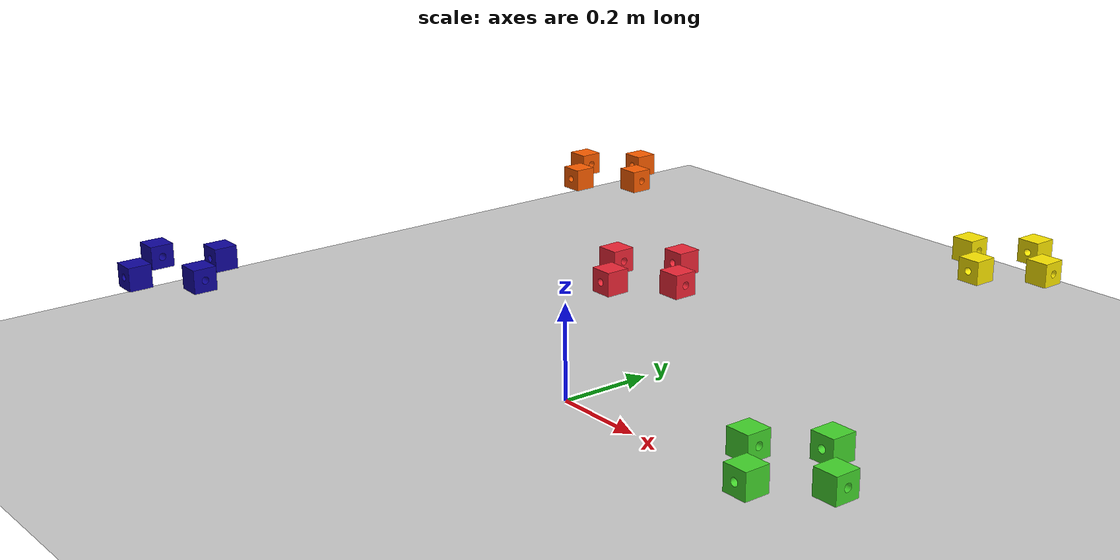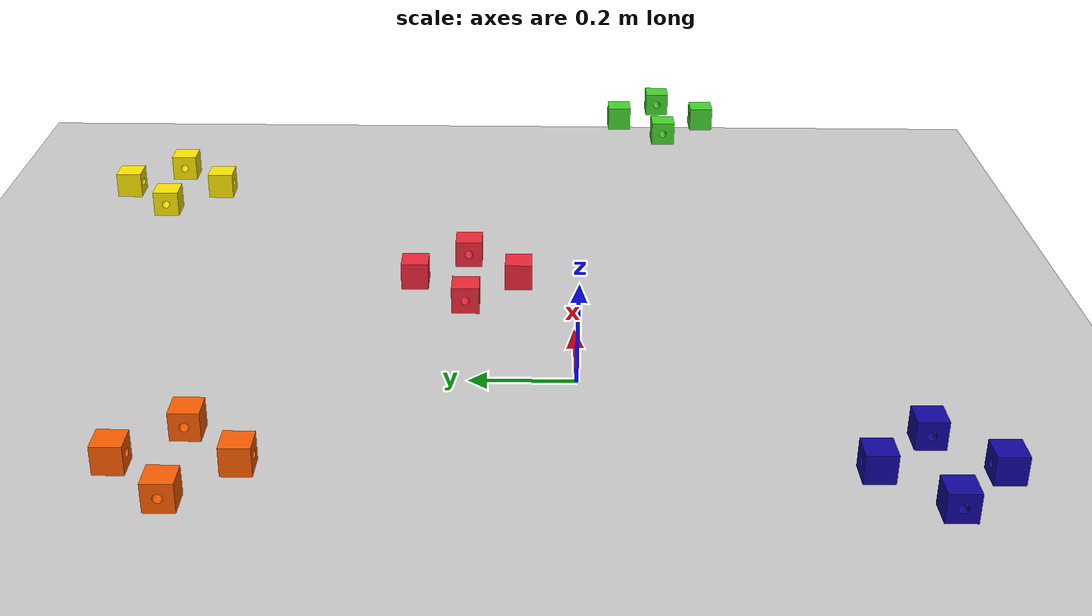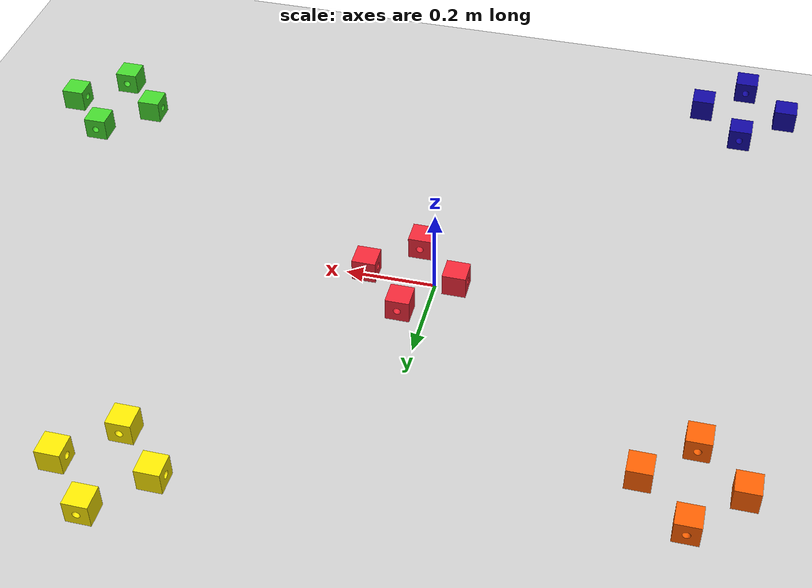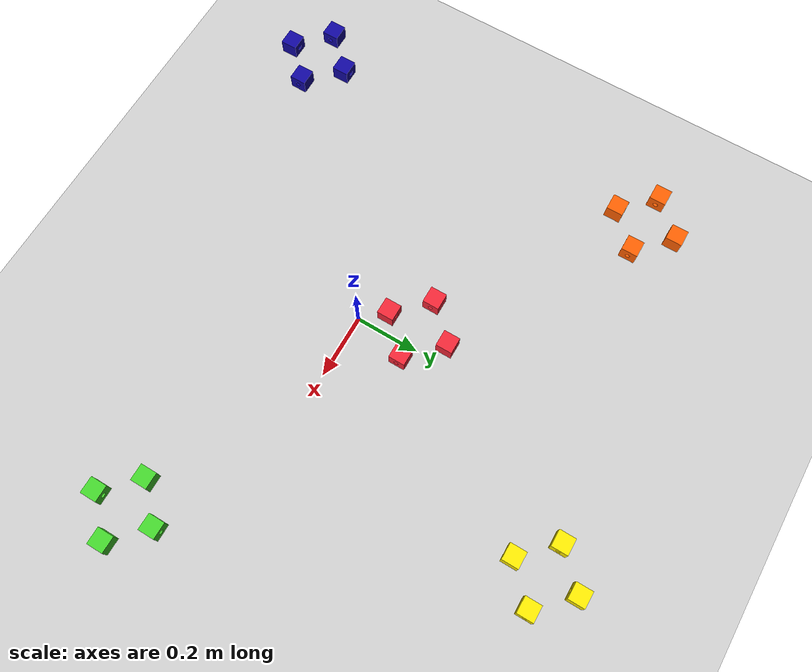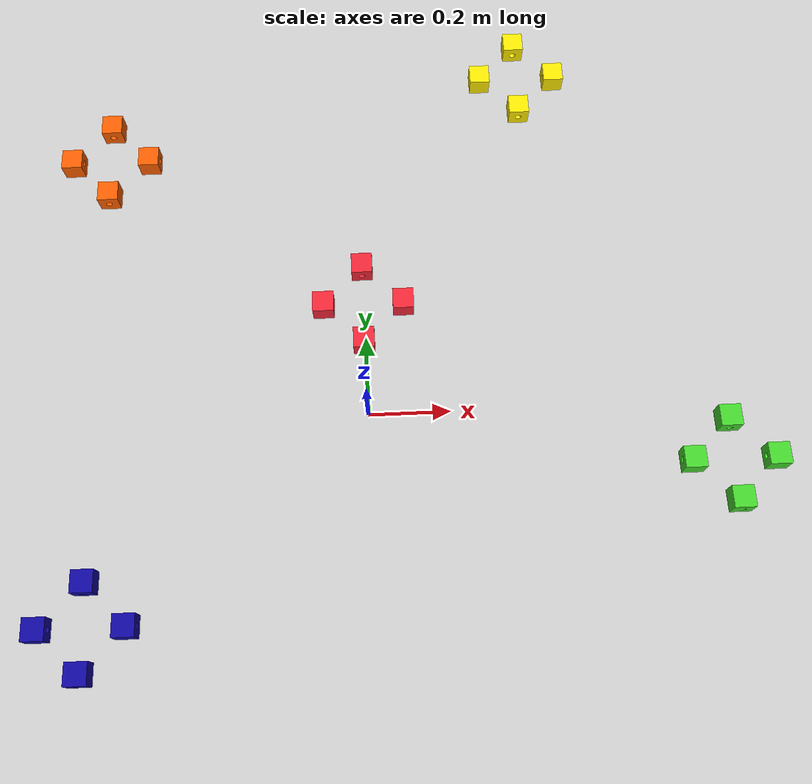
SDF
<sdf version="1.6">
 <world name="wro_world">
  <include><uri>model://sun</uri></include>
  <include><uri>model://ground_plane</uri></include>
  <include><uri>model://orange_block_0</uri><pose>-.6 .668753 .224 0 0 0</pose></include>
  <include><uri>model://orange_block_oppo</uri><pose>-.531247 .6 .224 0 0 0</pose></include>
  <include><uri>model://orange_block_0</uri><pose>-.6 .484982 .224 0 0 0</pose></include>
  <include><uri>model://orange_block_oppo</uri><pose>-.715018 .6 .224 0 0 0</pose></include>
  <include><uri>model://yellow_block_0</uri><pose>.4 .868753 .224 0 0 0</pose></include>
  <include><uri>model://yellow_block_oppo</uri><pose>.468753 .8 .224 0 0 0</pose></include>
  <include><uri>model://yellow_block_0</uri><pose>.4 .685 .224 0 0 0</pose></include>
  <include><uri>model://yellow_block_oppo</uri><pose>.284982 .8 .224 0 0 0</pose></include>
  <include><uri>model://red_block_2</uri><pose>0 .268753 .224 0 0 0</pose></include>
  <include><uri>model://red_block_oppo</uri><pose>0.068753 .2 .224 0 0 0</pose></include>
  <include><uri>model://red_block_2</uri><pose>0 .085 .224 0 0 0</pose></include>
  <include><uri>model://red_block_oppo</uri><pose>-.115018 .2 .224 0 0 0</pose></include>
  <include><uri>model://green_block</uri><pose>.8 -.315 .224 0 0 0</pose></include>
  <include><uri>model://green_block_oppo</uri><pose>.868753 -.2 .224 0 0 0</pose></include>
  <include><uri>model://green_block</uri><pose>.8 -.134 .224 0 0 0</pose></include>
  <include><uri>model://green_block_oppo</uri><pose>.684982 -.2 .224 0 0 0</pose></include>
  <include><uri>model://blue_block</uri><pose>-.6 -.615018 .224 0 0 0</pose></include>
  <include><uri>model://blue_block_oppo</uri><pose>-.668753 -.5 .224 0 0 0</pose></include>
  <include><uri>model://blue_block</uri><pose>-.6 -.431247 .224 0 0 0</pose></include>
  <include><uri>model://blue_block_oppo</uri><pose>-.484982 -.5 .224 0 0 0</pose></include>
 </world>
</sdf>

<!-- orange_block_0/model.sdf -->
<sdf version='1.6'>
  <model name='orange_block_0'>
    <link name='link_0'>
      <pose frame=''>0 0 0 0 -0 0</pose>
      <inertial>
        <mass>1</mass>
        <inertia>
          <ixx>0.166667</ixx>
          <ixy>0</ixy>
          <ixz>0</ixz>
          <iyy>0.166667</iyy>
          <iyz>0</iyz>
          <izz>0.166667</izz>
        </inertia>
        <pose frame=''>0 0 0 0 -0 0</pose>
      </inertial>
      <self_collide>0</self_collide>
      <kinematic>0</kinematic>
      <gravity>0</gravity>
      <visual name='visual'>
        <pose frame=''>0 0 0 0 -0 0</pose>
        <geometry>
          <mesh>
            <uri>model://mesh/wro.stl</uri>
            <scale>1 1 1</scale>
          </mesh>
        </geometry>
        <material>
          <lighting>1</lighting>
          <script>
            <uri>file://media/materials/scripts/gazebo.material</uri>
            <name>Gazebo/Grey</name>
          </script>
          <ambient>0.996 0.369 0 1</ambient>
          <diffuse>0.996 0.369 0 1</diffuse>
          <specular>0.996 0.369 0 1</specular>
          <emissive>0 0 0 1</emissive>
          <shader type='vertex'>
            <normal_map>__default__</normal_map>
          </shader>
        </material>
        <cast_shadows>1</cast_shadows>
        <transparency>0</transparency>
      </visual>
      <collision name='collision'>
        <laser_retro>0</laser_retro>
        <max_contacts>10</max_contacts>
        <pose frame=''>0 0 0 0 -0 0</pose>
        <geometry>
          <mesh>
            <uri>model://mesh/wro.stl</uri>
          </mesh>
        </geometry>
        <surface>
          <friction>
            <ode>
              <mu>1</mu>
              <mu2>1</mu2>
              <fdir1>0 0 0</fdir1>
              <slip1>0</slip1>
              <slip2>0</slip2>
            </ode>
            <torsional>
              <coefficient>1</coefficient>
              <patch_radius>0</patch_radius>
              <surface_radius>0</surface_radius>
              <use_patch_radius>1</use_patch_radius>
              <ode>
                <slip>0</slip>
              </ode>
            </torsional>
          </friction>
          <bounce>
            <restitution_coefficient>0</restitution_coefficient>
            <threshold>1e+06</threshold>
          </bounce>
          <contact>
            <collide_without_contact>0</collide_without_contact>
            <collide_without_contact_bitmask>1</collide_without_contact_bitmask>
            <collide_bitmask>1</collide_bitmask>
            <ode>
              <soft_cfm>0</soft_cfm>
              <soft_erp>0.2</soft_erp>
              <kp>1e+13</kp>
              <kd>1</kd>
              <max_vel>0.01</max_vel>
              <min_depth>0</min_depth>
            </ode>
            <bullet>
              <split_impulse>1</split_impulse>
              <split_impulse_penetration_threshold>-0.01</split_impulse_penetration_threshold>
              <soft_cfm>0</soft_cfm>
              <soft_erp>0.2</soft_erp>
              <kp>1e+13</kp>
              <kd>1</kd>
            </bullet>
          </contact>
        </surface>
      </collision>
    </link>
    <static>0</static>
    <allow_auto_disable>1</allow_auto_disable>
  </model>
</sdf>

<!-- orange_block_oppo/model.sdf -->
<sdf version='1.6'>
  <model name='orange_block_oppo'>
    <link name='link_1'>
      <pose frame=''>0 0 0 0 -0 -1.5708</pose>
      <inertial>
        <mass>1</mass>
        <inertia>
          <ixx>0.166667</ixx>
          <ixy>0</ixy>
          <ixz>0</ixz>
          <iyy>0.166667</iyy>
          <iyz>0</iyz>
          <izz>0.166667</izz>
        </inertia>
        <pose frame=''>0 0 0 0 -0 0</pose>
      </inertial>
      <self_collide>0</self_collide>
      <kinematic>0</kinematic>
      <gravity>0</gravity>
      <visual name='visual'>
        <pose frame=''>0 0 0 0 -0 0</pose>
        <geometry>
          <mesh>
            <uri>model://mesh/wro.stl</uri>
            <scale>1 1 1</scale>
          </mesh>
        </geometry>
        <material>
          <lighting>1</lighting>
          <script>
            <uri>file://media/materials/scripts/gazebo.material</uri>
            <name>Gazebo/Grey</name>
          </script>
          <ambient>0.996 0.369 0 1</ambient>
          <diffuse>0.996 0.369 0 1</diffuse>
          <specular>0.996 0.369 0 1</specular>
          <emissive>0 0 0 1</emissive>
          <shader type='vertex'>
            <normal_map>__default__</normal_map>
          </shader>
        </material>
        <cast_shadows>1</cast_shadows>
        <transparency>0</transparency>
      </visual>
      <collision name='collision'>
        <laser_retro>0</laser_retro>
        <max_contacts>10</max_contacts>
        <pose frame=''>0 0 0 0 -0 0</pose>
        <geometry>
          <mesh>
            <uri>model://mesh/wro.stl</uri>
          </mesh>
        </geometry>
        <surface>
          <friction>
            <ode>
              <mu>1</mu>
              <mu2>1</mu2>
              <fdir1>0 0 0</fdir1>
              <slip1>0</slip1>
              <slip2>0</slip2>
            </ode>
            <torsional>
              <coefficient>1</coefficient>
              <patch_radius>0</patch_radius>
              <surface_radius>0</surface_radius>
              <use_patch_radius>1</use_patch_radius>
              <ode>
                <slip>0</slip>
              </ode>
            </torsional>
          </friction>
          <bounce>
            <restitution_coefficient>0</restitution_coefficient>
            <threshold>1e+06</threshold>
          </bounce>
          <contact>
            <collide_without_contact>0</collide_without_contact>
            <collide_without_contact_bitmask>1</collide_without_contact_bitmask>
            <collide_bitmask>1</collide_bitmask>
            <ode>
              <soft_cfm>0</soft_cfm>
              <soft_erp>0.2</soft_erp>
              <kp>1e+13</kp>
              <kd>1</kd>
              <max_vel>0.01</max_vel>
              <min_depth>0</min_depth>
            </ode>
            <bullet>
              <split_impulse>1</split_impulse>
              <split_impulse_penetration_threshold>-0.01</split_impulse_penetration_threshold>
              <soft_cfm>0</soft_cfm>
              <soft_erp>0.2</soft_erp>
              <kp>1e+13</kp>
              <kd>1</kd>
            </bullet>
          </contact>
        </surface>
      </collision>
    </link>
    <static>0</static>
    <allow_auto_disable>1</allow_auto_disable>
  </model>
</sdf>

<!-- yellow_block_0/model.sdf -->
<sdf version='1.6'>
  <model name='yellow_block_0'>
    <link name='link_1'>
      <pose frame=''>0 0 0 0 -0 0</pose>
      <inertial>
        <mass>1</mass>
        <inertia>
          <ixx>0.166667</ixx>
          <ixy>0</ixy>
          <ixz>0</ixz>
          <iyy>0.166667</iyy>
          <iyz>0</iyz>
          <izz>0.166667</izz>
        </inertia>
        <pose frame=''>0 0 0.224 0 -0 0</pose>
      </inertial>
      <self_collide>0</self_collide>
      <kinematic>0</kinematic>
      <gravity>0</gravity>
      <visual name='visual'>
        <pose frame=''>0 0 0 0 -0 0</pose>
        <geometry>
          <mesh>
            <uri>model://mesh/wro.stl</uri>
            <scale>1 1 1</scale>
          </mesh>
        </geometry>
        <material>
          <lighting>1</lighting>
          <script>
            <uri>file://media/materials/scripts/gazebo.material</uri>
            <name>Gazebo/Grey</name>
          </script>
          <ambient>0.996 0.914 0 1</ambient>
          <diffuse>0.996 0.914 0 1</diffuse>
          <specular>0.996 0.914 0 1</specular>
          <emissive>0 0 0 1</emissive>
          <shader type='vertex'>
            <normal_map>__default__</normal_map>
          </shader>
        </material>
        <cast_shadows>1</cast_shadows>
        <transparency>0</transparency>
      </visual>
      <collision name='collision'>
        <laser_retro>0</laser_retro>
        <max_contacts>10</max_contacts>
        <pose frame=''>0 0 0 0 -0 0</pose>
        <geometry>
          <mesh>
            <uri>model://mesh/wro.stl</uri>
          </mesh>
        </geometry>
        <surface>
          <friction>
            <ode>
              <mu>1</mu>
              <mu2>1</mu2>
              <fdir1>0 0 0</fdir1>
              <slip1>0</slip1>
              <slip2>0</slip2>
            </ode>
            <torsional>
              <coefficient>1</coefficient>
              <patch_radius>0</patch_radius>
              <surface_radius>0</surface_radius>
              <use_patch_radius>1</use_patch_radius>
              <ode>
                <slip>0</slip>
              </ode>
            </torsional>
          </friction>
          <bounce>
            <restitution_coefficient>0</restitution_coefficient>
            <threshold>1e+06</threshold>
          </bounce>
          <contact>
            <collide_without_contact>0</collide_without_contact>
            <collide_without_contact_bitmask>1</collide_without_contact_bitmask>
            <collide_bitmask>1</collide_bitmask>
            <ode>
              <soft_cfm>0</soft_cfm>
              <soft_erp>0.2</soft_erp>
              <kp>1e+13</kp>
              <kd>1</kd>
              <max_vel>0.01</max_vel>
              <min_depth>0</min_depth>
            </ode>
            <bullet>
              <split_impulse>1</split_impulse>
              <split_impulse_penetration_threshold>-0.01</split_impulse_penetration_threshold>
              <soft_cfm>0</soft_cfm>
              <soft_erp>0.2</soft_erp>
              <kp>1e+13</kp>
              <kd>1</kd>
            </bullet>
          </contact>
        </surface>
      </collision>
    </link>
    <static>0</static>
    <allow_auto_disable>1</allow_auto_disable>
  </model>
</sdf>

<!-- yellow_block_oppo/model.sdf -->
<sdf version='1.6'>
  <model name='yellow_block_oppo'>
    <link name='link_1'>
      <pose frame=''>0 0 0 -0 -0 -1.5708</pose>
      <inertial>
        <mass>1</mass>
        <inertia>
          <ixx>0.166667</ixx>
          <ixy>0</ixy>
          <ixz>0</ixz>
          <iyy>0.166667</iyy>
          <iyz>0</iyz>
          <izz>0.166667</izz>
        </inertia>
        <pose frame=''>0 0 0 0 -0 0</pose>
      </inertial>
      <self_collide>0</self_collide>
      <kinematic>0</kinematic>
      <gravity>0</gravity>
      <visual name='visual'>
        <pose frame=''>0 0 0 0 -0 0</pose>
        <geometry>
          <mesh>
            <uri>model://mesh/wro.stl</uri>
            <scale>1 1 1</scale>
          </mesh>
        </geometry>
        <material>
          <lighting>1</lighting>
          <script>
            <uri>file://media/materials/scripts/gazebo.material</uri>
            <name>Gazebo/Grey</name>
          </script>
          <ambient>0.996 0.914 0 1</ambient>
          <diffuse>0.996 0.914 0 1</diffuse>
          <specular>0.996 0.914 0 1</specular>
          <emissive>0 0 0 1</emissive>
          <shader type='vertex'>
            <normal_map>__default__</normal_map>
          </shader>
        </material>
        <cast_shadows>1</cast_shadows>
        <transparency>0</transparency>
      </visual>
      <collision name='collision'>
        <laser_retro>0</laser_retro>
        <max_contacts>10</max_contacts>
        <pose frame=''>0 0 0 0 -0 0</pose>
        <geometry>
          <mesh>
            <uri>model://mesh/wro.stl</uri>
          </mesh>
        </geometry>
        <surface>
          <friction>
            <ode>
              <mu>1</mu>
              <mu2>1</mu2>
              <fdir1>0 0 0</fdir1>
              <slip1>0</slip1>
              <slip2>0</slip2>
            </ode>
            <torsional>
              <coefficient>1</coefficient>
              <patch_radius>0</patch_radius>
              <surface_radius>0</surface_radius>
              <use_patch_radius>1</use_patch_radius>
              <ode>
                <slip>0</slip>
              </ode>
            </torsional>
          </friction>
          <bounce>
            <restitution_coefficient>0</restitution_coefficient>
            <threshold>1e+06</threshold>
          </bounce>
          <contact>
            <collide_without_contact>0</collide_without_contact>
            <collide_without_contact_bitmask>1</collide_without_contact_bitmask>
            <collide_bitmask>1</collide_bitmask>
            <ode>
              <soft_cfm>0</soft_cfm>
              <soft_erp>0.2</soft_erp>
              <kp>1e+13</kp>
              <kd>1</kd>
              <max_vel>0.01</max_vel>
              <min_depth>0</min_depth>
            </ode>
            <bullet>
              <split_impulse>1</split_impulse>
              <split_impulse_penetration_threshold>-0.01</split_impulse_penetration_threshold>
              <soft_cfm>0</soft_cfm>
              <soft_erp>0.2</soft_erp>
              <kp>1e+13</kp>
              <kd>1</kd>
            </bullet>
          </contact>
        </surface>
      </collision>
    </link>
    <static>0</static>
    <allow_auto_disable>1</allow_auto_disable>
  </model>
</sdf>

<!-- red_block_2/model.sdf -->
<sdf version='1.6'>
  <model name='red_block_2'>
    <link name='link_9'>
      <pose frame=''>0 0 0 0 -0 0</pose>
      <inertial>
        <mass>1</mass>
        <inertia>
          <ixx>0.166667</ixx>
          <ixy>0</ixy>
          <ixz>0</ixz>
          <iyy>0.166667</iyy>
          <iyz>0</iyz>
          <izz>0.166667</izz>
        </inertia>
        <pose frame=''>0 0 0 0 -0 0</pose>
      </inertial>
      <self_collide>0</self_collide>
      <kinematic>0</kinematic>
      <gravity>0</gravity>
      <visual name='visual'>
        <pose frame=''>0 0 0 0 -0 0</pose>
        <geometry>
          <mesh>
            <uri>model://mesh/wro.stl</uri>
            <scale>1 1 1</scale>
          </mesh>
        </geometry>
        <material>
          <lighting>1</lighting>
          <script>
            <uri>file://media/materials/scripts/gazebo.material</uri>
            <name>Gazebo/Grey</name>
          </script>
          <ambient>0.933 0.153 0.216 1</ambient>
          <diffuse>0.933 0.153 0.216 1</diffuse>
          <specular>0.933 0.153 0.216 1</specular>
          <emissive>0 0 0 1</emissive>
          <shader type='vertex'>
            <normal_map>__default__</normal_map>
          </shader>
        </material>
        <cast_shadows>1</cast_shadows>
        <transparency>0</transparency>
      </visual>
      <collision name='collision'>
        <laser_retro>0</laser_retro>
        <max_contacts>10</max_contacts>
        <pose frame=''>0 0 0 0 -0 0</pose>
        <geometry>
          <mesh>
            <uri>model://mesh/wro.stl</uri>
          </mesh>
        </geometry>
        <surface>
          <friction>
            <ode>
              <mu>1</mu>
              <mu2>1</mu2>
              <fdir1>0 0 0</fdir1>
              <slip1>0</slip1>
              <slip2>0</slip2>
            </ode>
            <torsional>
              <coefficient>1</coefficient>
              <patch_radius>0</patch_radius>
              <surface_radius>0</surface_radius>
              <use_patch_radius>1</use_patch_radius>
              <ode>
                <slip>0</slip>
              </ode>
            </torsional>
          </friction>
          <bounce>
            <restitution_coefficient>0</restitution_coefficient>
            <threshold>1e+06</threshold>
          </bounce>
          <contact>
            <collide_without_contact>0</collide_without_contact>
            <collide_without_contact_bitmask>1</collide_without_contact_bitmask>
            <collide_bitmask>1</collide_bitmask>
            <ode>
              <soft_cfm>0</soft_cfm>
              <soft_erp>0.2</soft_erp>
              <kp>1e+13</kp>
              <kd>1</kd>
              <max_vel>0.01</max_vel>
              <min_depth>0</min_depth>
            </ode>
            <bullet>
              <split_impulse>1</split_impulse>
              <split_impulse_penetration_threshold>-0.01</split_impulse_penetration_threshold>
              <soft_cfm>0</soft_cfm>
              <soft_erp>0.2</soft_erp>
              <kp>1e+13</kp>
              <kd>1</kd>
            </bullet>
          </contact>
        </surface>
      </collision>
    </link>
    <static>0</static>
    <allow_auto_disable>1</allow_auto_disable>
  </model>
</sdf>

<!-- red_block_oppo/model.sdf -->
<sdf version='1.6'>
  <model name='red_block_oppo'>
    <link name='link_1'>
      <pose frame=''>0 0 0 0 -0 -1.5708</pose>
      <inertial>
        <mass>1</mass>
        <inertia>
          <ixx>0.166667</ixx>
          <ixy>0</ixy>
          <ixz>0</ixz>
          <iyy>0.166667</iyy>
          <iyz>0</iyz>
          <izz>0.166667</izz>
        </inertia>
        <pose frame=''>0 0 0 0 -0 0</pose>
      </inertial>
      <self_collide>0</self_collide>
      <kinematic>0</kinematic>
      <gravity>0</gravity>
      <visual name='visual'>
        <pose frame=''>0 0 0 0 -0 0</pose>
        <geometry>
          <mesh>
            <uri>model://mesh/wro.stl</uri>
            <scale>1 1 1</scale>
          </mesh>
        </geometry>
        <material>
          <lighting>1</lighting>
          <script>
            <uri>file://media/materials/scripts/gazebo.material</uri>
            <name>Gazebo/Grey</name>
          </script>
          <ambient>0.944 0.153 0.216 1</ambient>
          <diffuse>0.944 0.153 0.216 1</diffuse>
          <specular>0.944 0.153 0.216 1</specular>
          <emissive>0 0 0 1</emissive>
          <shader type='vertex'>
            <normal_map>__default__</normal_map>
          </shader>
        </material>
        <cast_shadows>1</cast_shadows>
        <transparency>0</transparency>
      </visual>
      <collision name='collision'>
        <laser_retro>0</laser_retro>
        <max_contacts>10</max_contacts>
        <pose frame=''>0 0 0 0 -0 0</pose>
        <geometry>
          <mesh>
            <uri>model://mesh/wro.stl</uri>
          </mesh>
        </geometry>
        <surface>
          <friction>
            <ode>
              <mu>1</mu>
              <mu2>1</mu2>
              <fdir1>0 0 0</fdir1>
              <slip1>0</slip1>
              <slip2>0</slip2>
            </ode>
            <torsional>
              <coefficient>1</coefficient>
              <patch_radius>0</patch_radius>
              <surface_radius>0</surface_radius>
              <use_patch_radius>1</use_patch_radius>
              <ode>
                <slip>0</slip>
              </ode>
            </torsional>
          </friction>
          <bounce>
            <restitution_coefficient>0</restitution_coefficient>
            <threshold>1e+06</threshold>
          </bounce>
          <contact>
            <collide_without_contact>0</collide_without_contact>
            <collide_without_contact_bitmask>1</collide_without_contact_bitmask>
            <collide_bitmask>1</collide_bitmask>
            <ode>
              <soft_cfm>0</soft_cfm>
              <soft_erp>0.2</soft_erp>
              <kp>1e+13</kp>
              <kd>1</kd>
              <max_vel>0.01</max_vel>
              <min_depth>0</min_depth>
            </ode>
            <bullet>
              <split_impulse>1</split_impulse>
              <split_impulse_penetration_threshold>-0.01</split_impulse_penetration_threshold>
              <soft_cfm>0</soft_cfm>
              <soft_erp>0.2</soft_erp>
              <kp>1e+13</kp>
              <kd>1</kd>
            </bullet>
          </contact>
        </surface>
      </collision>
    </link>
    <static>0</static>
    <allow_auto_disable>1</allow_auto_disable>
  </model>
</sdf>

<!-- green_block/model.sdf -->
<sdf version='1.6'>
  <model name='green_block_4'>
    <link name='link_10'>
      <pose frame=''>0 0 0 0 -0 0</pose>
      <inertial>
        <mass>1</mass>
        <inertia>
          <ixx>0.166667</ixx>
          <ixy>0</ixy>
          <ixz>0</ixz>
          <iyy>0.166667</iyy>
          <iyz>0</iyz>
          <izz>0.166667</izz>
        </inertia>
        <pose frame=''>0 0 0 0 -0 0</pose>
      </inertial>
      <self_collide>0</self_collide>
      <kinematic>0</kinematic>
      <gravity>0</gravity>
      <visual name='visual'>
        <pose frame=''>0 0 0 0 -0 0</pose>
        <geometry>
          <mesh>
            <uri>model://mesh/wro.stl</uri>
            <scale>1 1 1</scale>
          </mesh>
        </geometry>
        <material>
          <lighting>1</lighting>
          <script>
            <uri>file://media/materials/scripts/gazebo.material</uri>
            <name>Gazebo/Grey</name>
          </script>
          <ambient>0.267 0.839 0.173 1</ambient>
          <diffuse>0.267 0.839 0.173 1</diffuse>
          <specular>0.267 0.839 0.173 1</specular>
          <emissive>0 0 0 1</emissive>
          <shader type='vertex'>
            <normal_map>__default__</normal_map>
          </shader>
        </material>
        <cast_shadows>1</cast_shadows>
        <transparency>0</transparency>
      </visual>
      <collision name='collision'>
        <laser_retro>0</laser_retro>
        <max_contacts>10</max_contacts>
        <pose frame=''>0 0 0 0 -0 0</pose>
        <geometry>
          <mesh>
            <uri>model://mesh/wro.stl</uri>
          </mesh>
        </geometry>
        <surface>
          <friction>
            <ode>
              <mu>1</mu>
              <mu2>1</mu2>
              <fdir1>0 0 0</fdir1>
              <slip1>0</slip1>
              <slip2>0</slip2>
            </ode>
            <torsional>
              <coefficient>1</coefficient>
              <patch_radius>0</patch_radius>
              <surface_radius>0</surface_radius>
              <use_patch_radius>1</use_patch_radius>
              <ode>
                <slip>0</slip>
              </ode>
            </torsional>
          </friction>
          <bounce>
            <restitution_coefficient>0</restitution_coefficient>
            <threshold>1e+06</threshold>
          </bounce>
          <contact>
            <collide_without_contact>0</collide_without_contact>
            <collide_without_contact_bitmask>1</collide_without_contact_bitmask>
            <collide_bitmask>1</collide_bitmask>
            <ode>
              <soft_cfm>0</soft_cfm>
              <soft_erp>0.2</soft_erp>
              <kp>1e+13</kp>
              <kd>1</kd>
              <max_vel>0.01</max_vel>
              <min_depth>0</min_depth>
            </ode>
            <bullet>
              <split_impulse>1</split_impulse>
              <split_impulse_penetration_threshold>-0.01</split_impulse_penetration_threshold>
              <soft_cfm>0</soft_cfm>
              <soft_erp>0.2</soft_erp>
              <kp>1e+13</kp>
              <kd>1</kd>
            </bullet>
          </contact>
        </surface>
      </collision>
    </link>
    <static>0</static>
    <allow_auto_disable>1</allow_auto_disable>
  </model>
</sdf>

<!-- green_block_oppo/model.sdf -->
<sdf version='1.6'>
  <model name='green_block_oppo'>
    <link name='link_1'>
      <pose frame=''>0 0 0 0 -0 -1.5708</pose>
      <inertial>
        <mass>1</mass>
        <inertia>
          <ixx>0.166667</ixx>
          <ixy>0</ixy>
          <ixz>0</ixz>
          <iyy>0.166667</iyy>
          <iyz>0</iyz>
          <izz>0.166667</izz>
        </inertia>
        <pose frame=''>0 0 0 0 -0 0</pose>
      </inertial>
      <self_collide>0</self_collide>
      <kinematic>0</kinematic>
      <gravity>0</gravity>
      <visual name='visual'>
        <pose frame=''>0 0 0 0 -0 0</pose>
        <geometry>
          <mesh>
            <uri>model://mesh/wro.stl</uri>
            <scale>1 1 1</scale>
          </mesh>
        </geometry>
        <material>
          <lighting>1</lighting>
          <script>
            <uri>file://media/materials/scripts/gazebo.material</uri>
            <name>Gazebo/Grey</name>
          </script>
          <ambient>0.267 0.839 0.173 1</ambient>
          <diffuse>0.267 0.839 0.173 1</diffuse>
          <specular>0.267 0.839 0.173 1</specular>
          <emissive>0 0 0 1</emissive>
          <shader type='vertex'>
            <normal_map>__default__</normal_map>
          </shader>
        </material>
        <cast_shadows>1</cast_shadows>
        <transparency>0</transparency>
      </visual>
      <collision name='collision'>
        <laser_retro>0</laser_retro>
        <max_contacts>10</max_contacts>
        <pose frame=''>0 0 0 0 -0 0</pose>
        <geometry>
          <mesh>
            <uri>model://mesh/wro.stl</uri>
          </mesh>
        </geometry>
        <surface>
          <friction>
            <ode>
              <mu>1</mu>
              <mu2>1</mu2>
              <fdir1>0 0 0</fdir1>
              <slip1>0</slip1>
              <slip2>0</slip2>
            </ode>
            <torsional>
              <coefficient>1</coefficient>
              <patch_radius>0</patch_radius>
              <surface_radius>0</surface_radius>
              <use_patch_radius>1</use_patch_radius>
              <ode>
                <slip>0</slip>
              </ode>
            </torsional>
          </friction>
          <bounce>
            <restitution_coefficient>0</restitution_coefficient>
            <threshold>1e+06</threshold>
          </bounce>
          <contact>
            <collide_without_contact>0</collide_without_contact>
            <collide_without_contact_bitmask>1</collide_without_contact_bitmask>
            <collide_bitmask>1</collide_bitmask>
            <ode>
              <soft_cfm>0</soft_cfm>
              <soft_erp>0.2</soft_erp>
              <kp>1e+13</kp>
              <kd>1</kd>
              <max_vel>0.01</max_vel>
              <min_depth>0</min_depth>
            </ode>
            <bullet>
              <split_impulse>1</split_impulse>
              <split_impulse_penetration_threshold>-0.01</split_impulse_penetration_threshold>
              <soft_cfm>0</soft_cfm>
              <soft_erp>0.2</soft_erp>
              <kp>1e+13</kp>
              <kd>1</kd>
            </bullet>
          </contact>
        </surface>
      </collision>
    </link>
    <static>0</static>
    <allow_auto_disable>1</allow_auto_disable>
  </model>
</sdf>

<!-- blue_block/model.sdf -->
<sdf version='1.6'>
  <model name='blue_block'>
    <link name='link_0'>
      <pose frame=''>0 0 0 0 -0 0</pose>
      <inertial>
        <mass>1</mass>
        <inertia>
          <ixx>0.166667</ixx>
          <ixy>0</ixy>
          <ixz>0</ixz>
          <iyy>0.166667</iyy>
          <iyz>0</iyz>
          <izz>0.166667</izz>
        </inertia>
        <pose frame=''>0 0 0 0 -0 0</pose>
      </inertial>
      <gravity>0</gravity>
      <self_collide>0</self_collide>
      <kinematic>0</kinematic>
      <visual name='visual'>
        <pose frame=''>0 0 0 0 -0 0</pose>
        <geometry>
          <mesh>
            <uri>model://mesh/wro.stl</uri>
            <scale>1 1 1</scale>
          </mesh>
        </geometry>
        <material>
          <lighting>1</lighting>
          <script>
            <uri>file://media/materials/scripts/gazebo.material</uri>
            <name>Gazebo/Grey</name>
          </script>
          <ambient>0.063 0.024 0.624 1</ambient>
          <diffuse>0.063 0.024 0.624 1</diffuse>
          <specular>0.063 0.024 0.624 1</specular>
          <emissive>0 0 0 1</emissive>
          <shader type='vertex'>
            <normal_map>__default__</normal_map>
          </shader>
        </material>
        <cast_shadows>1</cast_shadows>
        <transparency>0</transparency>
      </visual>
      <collision name='collision'>
        <laser_retro>0</laser_retro>
        <max_contacts>10</max_contacts>
        <pose frame=''>0 0 0 0 -0 0</pose>
        <geometry>
          <mesh>
            <uri>model://mesh/wro.stl</uri>
          </mesh>
        </geometry>
        <surface>
          <friction>
            <ode>
              <mu>1</mu>
              <mu2>1</mu2>
              <fdir1>0 0 0</fdir1>
              <slip1>0</slip1>
              <slip2>0</slip2>
            </ode>
            <torsional>
              <coefficient>1</coefficient>
              <patch_radius>0</patch_radius>
              <surface_radius>0</surface_radius>
              <use_patch_radius>1</use_patch_radius>
              <ode>
                <slip>0</slip>
              </ode>
            </torsional>
          </friction>
          <bounce>
            <restitution_coefficient>0</restitution_coefficient>
            <threshold>1e+06</threshold>
          </bounce>
          <contact>
            <collide_without_contact>0</collide_without_contact>
            <collide_without_contact_bitmask>1</collide_without_contact_bitmask>
            <collide_bitmask>1</collide_bitmask>
            <ode>
              <soft_cfm>0</soft_cfm>
              <soft_erp>0.2</soft_erp>
              <kp>1e+13</kp>
              <kd>1</kd>
              <max_vel>0.01</max_vel>
              <min_depth>0</min_depth>
            </ode>
            <bullet>
              <split_impulse>1</split_impulse>
              <split_impulse_penetration_threshold>-0.01</split_impulse_penetration_threshold>
              <soft_cfm>0</soft_cfm>
              <soft_erp>0.2</soft_erp>
              <kp>1e+13</kp>
              <kd>1</kd>
            </bullet>
          </contact>
        </surface>
      </collision>
    </link>
    <static>0</static>
    <allow_auto_disable>1</allow_auto_disable>
  </model>
</sdf>

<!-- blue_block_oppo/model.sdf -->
<sdf version='1.6'>
  <model name='blue_block_oppo'>
    <link name='link_1'>
      <pose frame=''>0 0 0 0 -0 1.5708</pose>
      <inertial>
        <mass>1</mass>
        <inertia>
          <ixx>0.166667</ixx>
          <ixy>0</ixy>
          <ixz>0</ixz>
          <iyy>0.166667</iyy>
          <iyz>0</iyz>
          <izz>0.166667</izz>
        </inertia>
        <pose frame=''>0 0 0 0 -0 0</pose>
      </inertial>
      <gravity>0</gravity>
      <self_collide>0</self_collide>
      <kinematic>0</kinematic>
      <visual name='visual'>
        <pose frame=''>0 0 0 0 -0 0</pose>
        <geometry>
          <mesh>
            <uri>model://mesh/wro.stl</uri>
            <scale>1 1 1</scale>
          </mesh>
        </geometry>
        <material>
          <lighting>1</lighting>
          <script>
            <uri>file://media/materials/scripts/gazebo.material</uri>
            <name>Gazebo/Grey</name>
          </script>
          <ambient>0.063 0.024 0.624 1</ambient>
          <diffuse>0.063 0.024 0.624 1</diffuse>
          <specular>0.063 0.024 0.624 1</specular>
          <emissive>0 0 0 1</emissive>
          <shader type='vertex'>
            <normal_map>__default__</normal_map>
          </shader>
        </material>
        <cast_shadows>1</cast_shadows>
        <transparency>0</transparency>
      </visual>
      <collision name='collision'>
        <laser_retro>0</laser_retro>
        <max_contacts>10</max_contacts>
        <pose frame=''>0 0 0 0 -0 0</pose>
        <geometry>
          <mesh>
            <uri>model://mesh/wro.stl</uri>
          </mesh>
        </geometry>
        <surface>
          <friction>
            <ode>
              <mu>1</mu>
              <mu2>1</mu2>
              <fdir1>0 0 0</fdir1>
              <slip1>0</slip1>
              <slip2>0</slip2>
            </ode>
            <torsional>
              <coefficient>1</coefficient>
              <patch_radius>0</patch_radius>
              <surface_radius>0</surface_radius>
              <use_patch_radius>1</use_patch_radius>
              <ode>
                <slip>0</slip>
              </ode>
            </torsional>
          </friction>
          <bounce>
            <restitution_coefficient>0</restitution_coefficient>
            <threshold>1e+06</threshold>
          </bounce>
          <contact>
            <collide_without_contact>0</collide_without_contact>
            <collide_without_contact_bitmask>1</collide_without_contact_bitmask>
            <collide_bitmask>1</collide_bitmask>
            <ode>
              <soft_cfm>0</soft_cfm>
              <soft_erp>0.2</soft_erp>
              <kp>1e+13</kp>
              <kd>1</kd>
              <max_vel>0.01</max_vel>
              <min_depth>0</min_depth>
            </ode>
            <bullet>
              <split_impulse>1</split_impulse>
              <split_impulse_penetration_threshold>-0.01</split_impulse_penetration_threshold>
              <soft_cfm>0</soft_cfm>
              <soft_erp>0.2</soft_erp>
              <kp>1e+13</kp>
              <kd>1</kd>
            </bullet>
          </contact>
        </surface>
      </collision>
    </link>
    <static>0</static>
    <allow_auto_disable>1</allow_auto_disable>
  </model>
</sdf>
